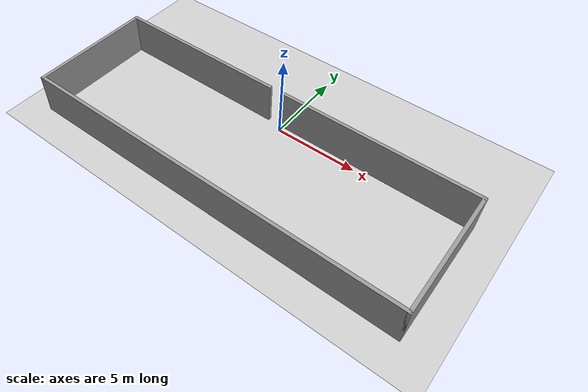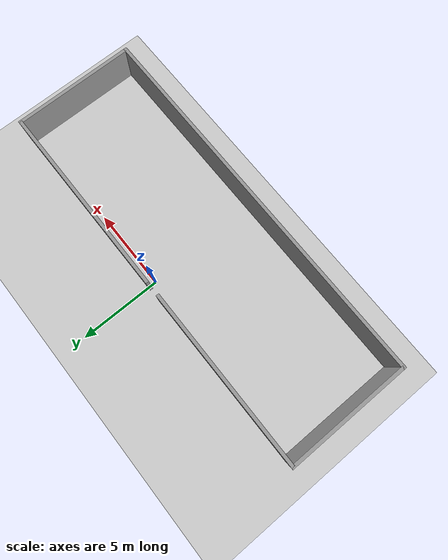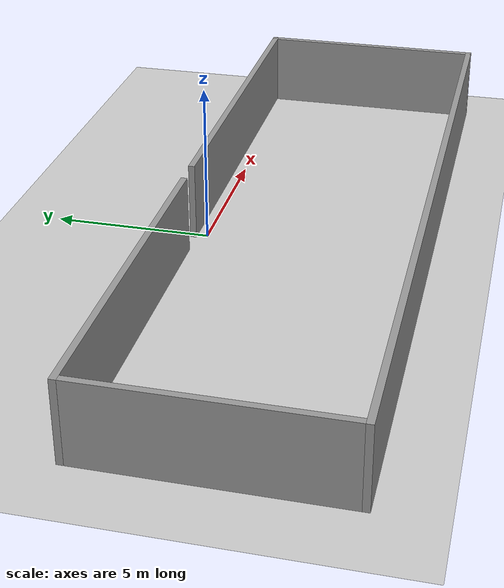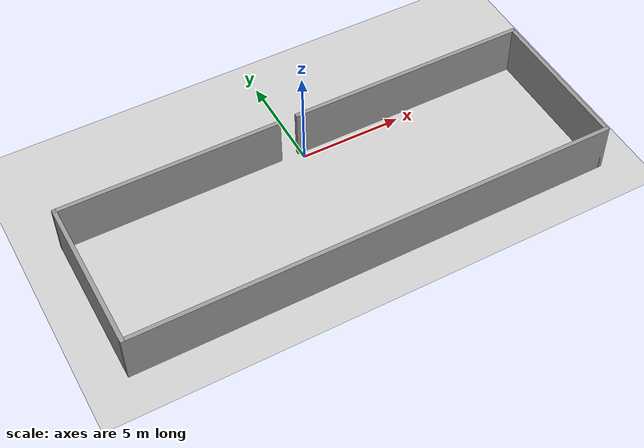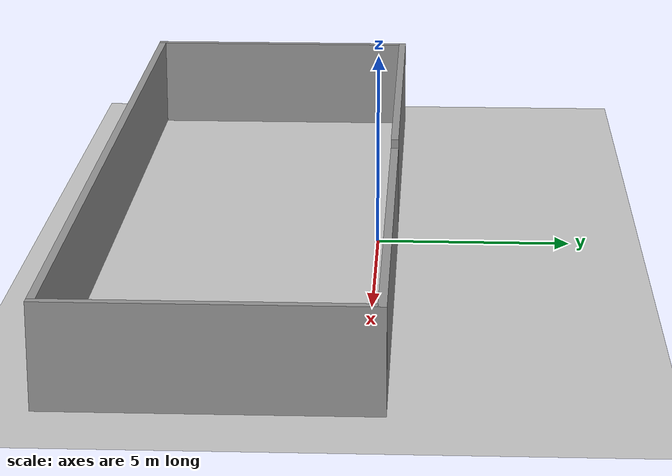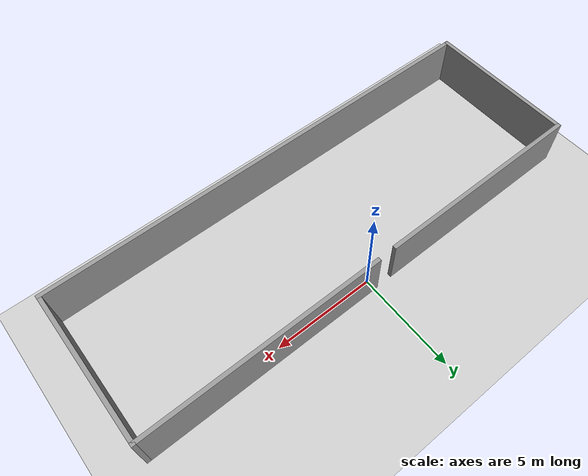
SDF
<sdf version="1.4">
 <world name="default">
  <light name="sun" type="directional">
   <pose>0 0 10 0 -0 0</pose>
   <diffuse>0.8 0.8 0.8 1</diffuse>
   <specular>0.2 0.2 0.2 1</specular>
   <attenuation>
    <range>1000</range>
    <constant>0.9</constant>
    <linear>0.01</linear>
    <quadratic>0.001</quadratic>
   </attenuation>
   <direction>-0.5 0.1 -0.9</direction>
  </light>
  <model name="ground_plane">
   <static>1</static>
   <link name="link">
    <collision name="collision">
     <geometry><plane><normal>0 0 1</normal><size>100 100</size></plane></geometry>
     <surface><friction><ode><mu>100</mu><mu2>50</mu2></ode></friction></surface>
    </collision>
    <visual name="visual">
     <cast_shadows>0</cast_shadows>
     <geometry><plane><normal>0 0 1</normal><size>100 100</size></plane></geometry>
     <material>
      <script><uri>file://media/materials/scripts/gazebo.material</uri><name>Gazebo/Grey</name></script>
     </material>
    </visual>
    <velocity_decay><linear>0</linear><angular>0</angular></velocity_decay>
   </link>
  </model>
  <physics type="ode">
   <max_step_size>0.001</max_step_size>
   <real_time_factor>1</real_time_factor>
   <real_time_update_rate>1000</real_time_update_rate>
   <gravity>0 0 -9.8</gravity>
  </physics>
  <scene><ambient>0.4 0.4 0.4 1</ambient><background>0.7 0.7 0.7 1</background><shadows>1</shadows></scene>
  <spherical_coordinates>
   <surface_model>EARTH_WGS84</surface_model>
   <latitude_deg>0</latitude_deg>
   <longitude_deg>0</longitude_deg>
   <elevation>0</elevation>
   <heading_deg>0</heading_deg>
  </spherical_coordinates>
  <model name="circle_1m">
   <link name="Wall_1">
    <collision name="Wall_1_Collision">
     <geometry><box><size>10.8461 0.2 2.5</size></box></geometry>
     <pose>0 0 1.25 0 -0 0</pose>
    </collision>
    <visual name="Wall_1_Visual">
     <pose>0 0 1.25 0 -0 0</pose>
     <geometry><box><size>10.8461 0.2 2.5</size></box></geometry>
     <material>
      <script><uri>file://media/materials/scripts/gazebo.material</uri><name>Gazebo/Grey</name></script>
     </material>
    </visual>
    <velocity_decay><linear>0</linear><angular>0</angular></velocity_decay>
    <pose>-6.43096 0.40163 0 0 -0 3.14159</pose>
   </link>
   <link name="Wall_2">
    <collision name="Wall_2_Collision">
     <geometry><box><size>7.65229 0.2 2.5</size></box></geometry>
     <pose>0 0 1.25 0 -0 0</pose>
    </collision>
    <visual name="Wall_2_Visual">
     <pose>0 0 1.25 0 -0 0</pose>
     <geometry><box><size>7.65229 0.2 2.5</size></box></geometry>
     <material>
      <script><uri>file://media/materials/scripts/gazebo.material</uri><name>Gazebo/Grey</name></script>
     </material>
    </visual>
    <velocity_decay><linear>0</linear><angular>0</angular></velocity_decay>
    <pose>-11.754 -3.32451 0 0 0 -1.5708</pose>
   </link>
   <link name="Wall_3">
    <collision name="Wall_3_Collision">
     <geometry><box><size>23.6215 0.2 2.5</size></box></geometry>
     <pose>0 0 1.25 0 -0 0</pose>
    </collision>
    <visual name="Wall_3_Visual">
     <pose>0 0 1.25 0 -0 0</pose>
     <geometry><box><size>23.6215 0.2 2.5</size></box></geometry>
     <material>
      <script><uri>file://media/materials/scripts/gazebo.material</uri><name>Gazebo/Grey</name></script>
     </material>
    </visual>
    <velocity_decay><linear>0</linear><angular>0</angular></velocity_decay>
    <pose>-0.043281 -7.05066 0 0 -0 0</pose>
   </link>
   <link name="Wall_4">
    <collision name="Wall_4_Collision">
     <geometry><box><size>7.6675 0.2 2.5</size></box></geometry>
     <pose>0 0 1.25 0 -0 0</pose>
    </collision>
    <visual name="Wall_4_Visual">
     <pose>0 0 1.25 0 -0 0</pose>
     <geometry><box><size>7.6675 0.2 2.5</size></box></geometry>
     <material>
      <script><uri>file://media/materials/scripts/gazebo.material</uri><name>Gazebo/Grey</name></script>
     </material>
    </visual>
    <velocity_decay><linear>0</linear><angular>0</angular></velocity_decay>
    <pose>11.6675 -3.31691 0 0 -0 1.5708</pose>
   </link>
   <link name="Wall_5">
    <collision name="Wall_5_Collision">
     <geometry><box><size>11.9412 0.2 2.5</size></box></geometry>
     <pose>0 0 1.25 0 -0 0</pose>
    </collision>
    <visual name="Wall_5_Visual">
     <pose>0 0 1.25 0 -0 0</pose>
     <geometry><box><size>11.9412 0.2 2.5</size></box></geometry>
     <material>
      <script><uri>file://media/materials/scripts/gazebo.material</uri><name>Gazebo/Grey</name></script>
     </material>
    </visual>
    <velocity_decay><linear>0</linear><angular>0</angular></velocity_decay>
    <pose>5.79687 0.416839 0 0 -0 3.14159</pose>
   </link>
   <static>1</static>
  </model>
 </world>
</sdf>
